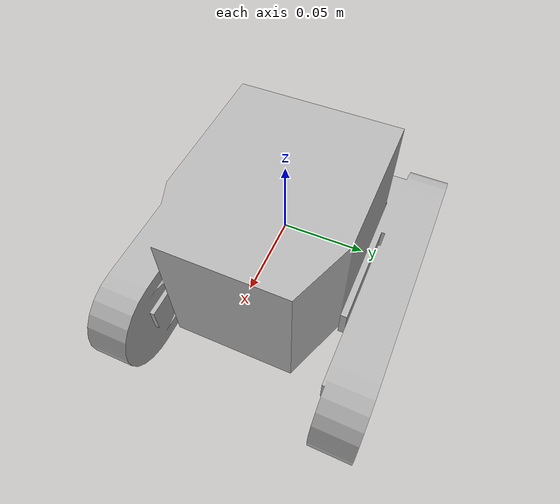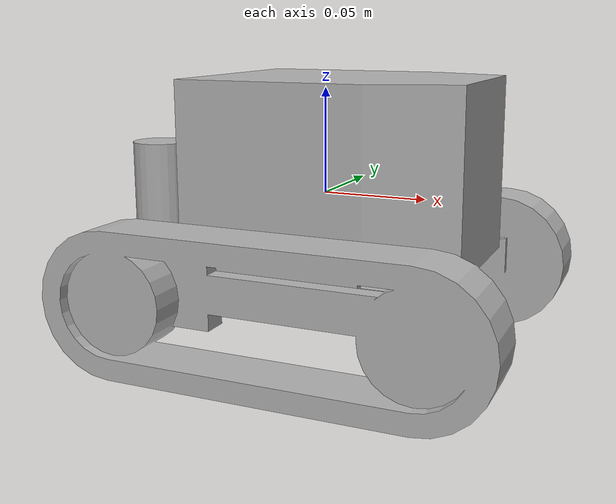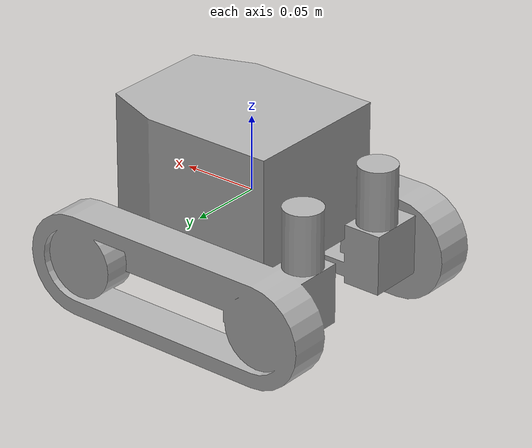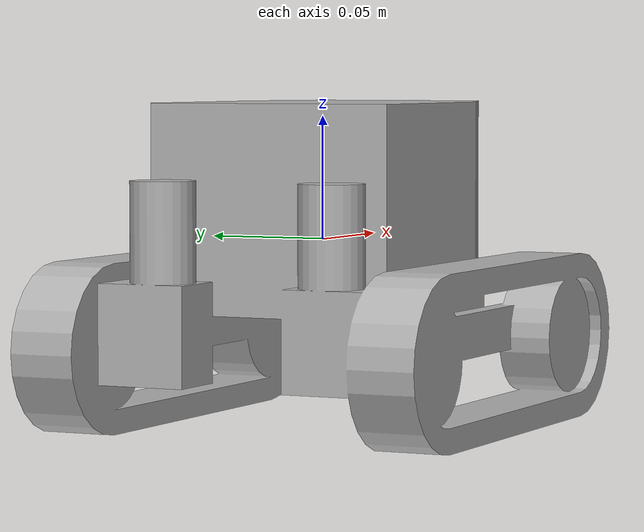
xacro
<?xml version="1.0"?>
<robot xmlns:xacro="http://www.ros.org/wiki/xacro" name="trip">
    <material name="grey">
        <color rgba="0.7 0.7 0.7 1.0"/>
    </material>

    <!-- Base link -->
    <link name="trip/base_link">
        <inertial>
            <origin xyz="0 0 0" rpy="0 0 0"/>
            <mass value="1.0"/>
            <inertia
                ixx="0.01" ixy="0.0" ixz="0.0"
                iyy="0.01" iyz="0.0"
                izz="0.01"/>
        </inertial>
        <visual>
            <origin xyz="0.003 -0.002 -0.075" rpy="0 0 3.1416"/>
            <geometry>
                <mesh filename="package://trip_description/meshes/base_link.stl" scale="1 1 1"/>
            </geometry>
            <material name="grey"/>
        </visual>
    </link>
</robot>
